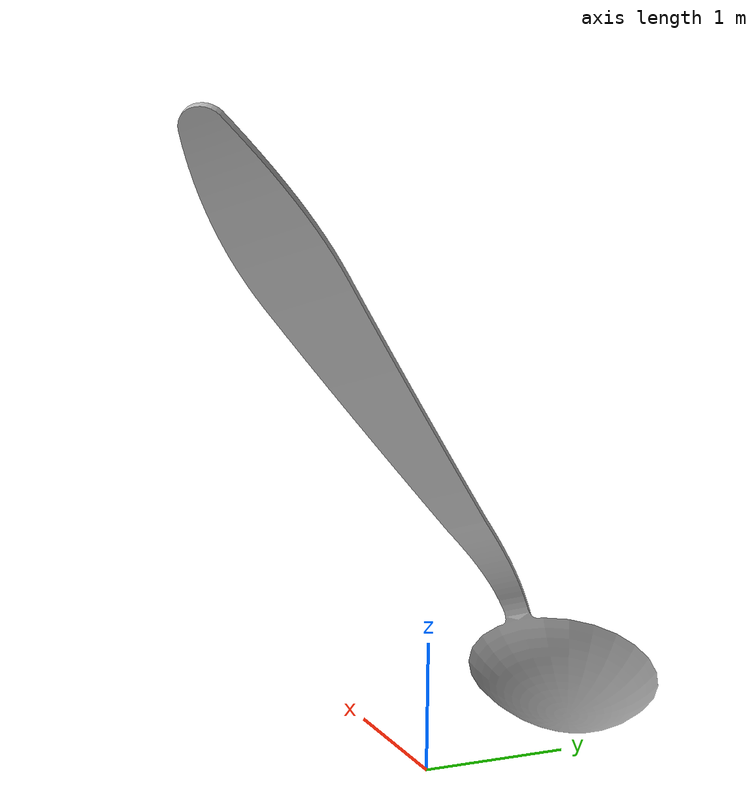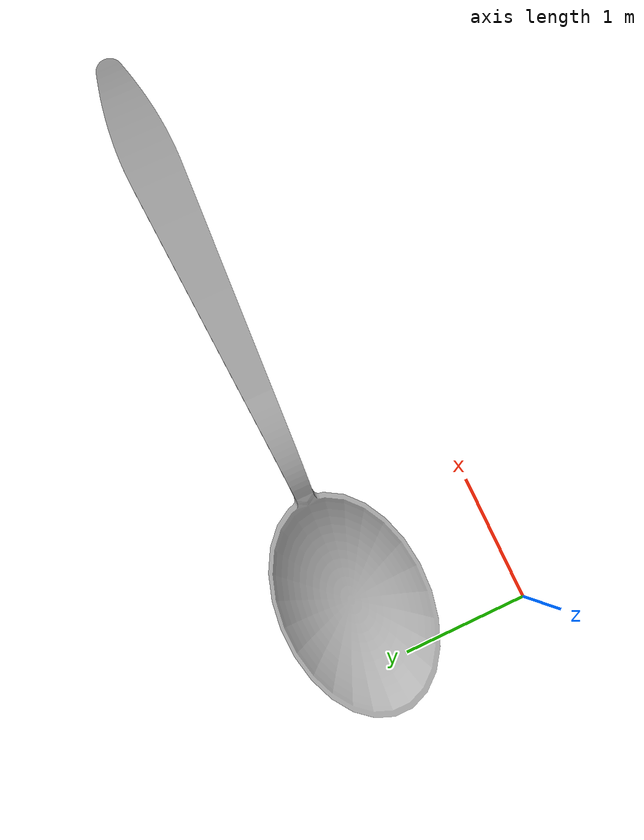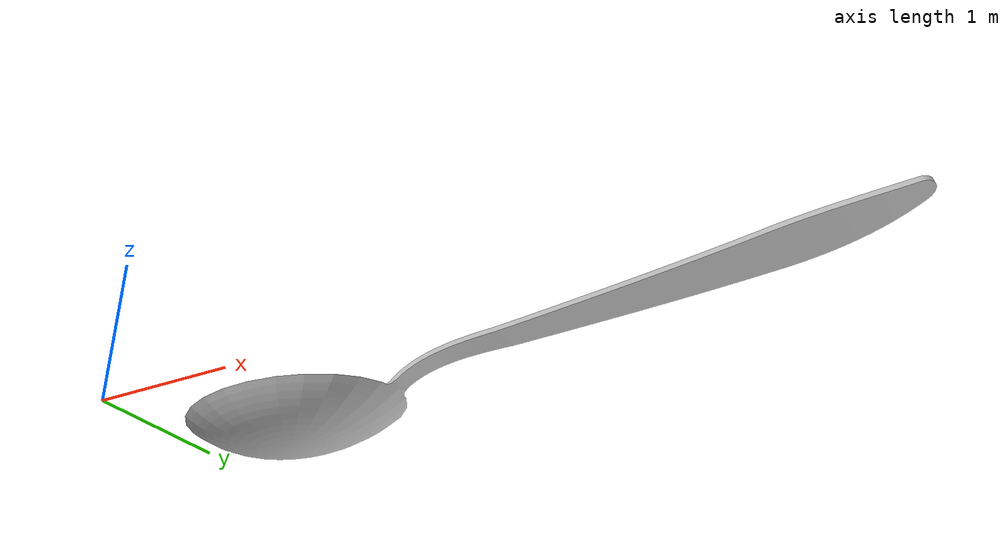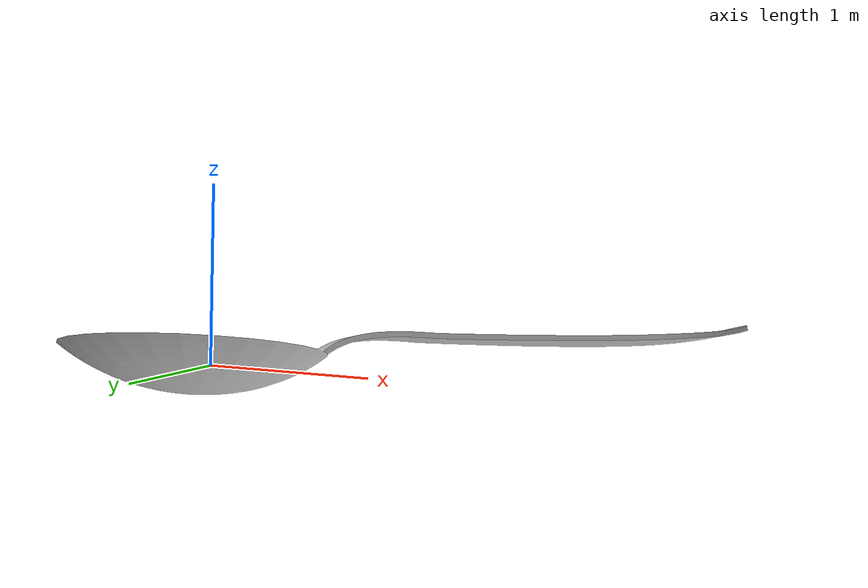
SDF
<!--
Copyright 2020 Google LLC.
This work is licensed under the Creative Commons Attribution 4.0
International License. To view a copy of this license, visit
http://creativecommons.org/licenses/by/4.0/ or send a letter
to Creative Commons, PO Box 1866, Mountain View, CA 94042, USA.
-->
<?xml version="1.0" ?>
<sdf version="1.6">
  <model name="Threshold_Bead_Cereal_Bowl_White">
    <link name="link_0">
      <inertial>
        <mass>0.1</mass>
        <inertia>
          <ixx>0.001</ixx>
          <ixy>0.000000</ixy>
          <ixz>0.000000</ixz>
          <iyy>0.001</iyy>
          <iyz>0.000000</iyz>
          <izz>0.001</izz>
        </inertia>
      </inertial>
      <visual name="visual">
        <geometry>
          <mesh>
            <uri>meshes/model.obj</uri>
          </mesh>
        </geometry>
      </visual>
      <inertial>
        <mass>0.1</mass>
        <inertia>
          <ixx>0.005</ixx>
          <iyy>0.005</iyy>
          <izz>0.0045</izz>
          <ixy>0.0</ixy>
          <ixz>0.0</ixz>
          <iyz>0.0</iyz>
        </inertia>
      </inertial>
      <collision name="collision_0">
        <geometry>
          <mesh>
            <uri>meshes/model.obj</uri>
          </mesh>
        </geometry>
      </collision>
    </link>
  </model>
</sdf>
